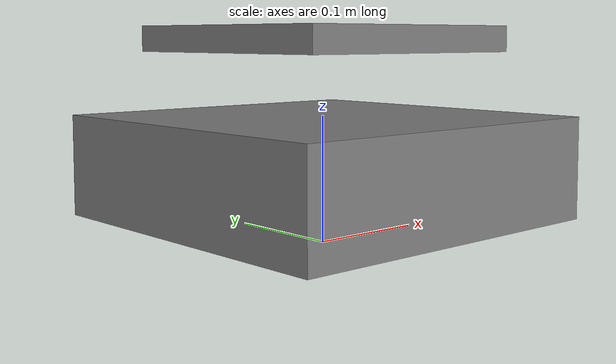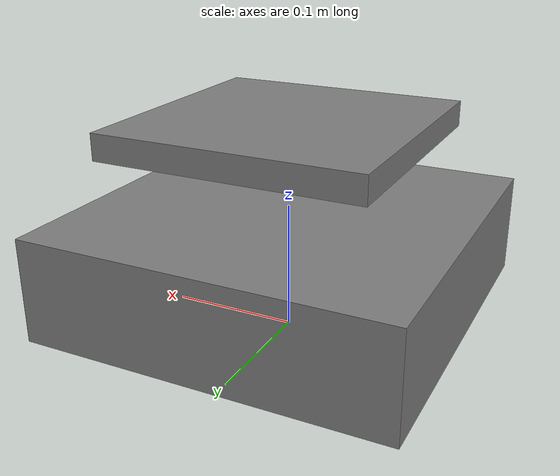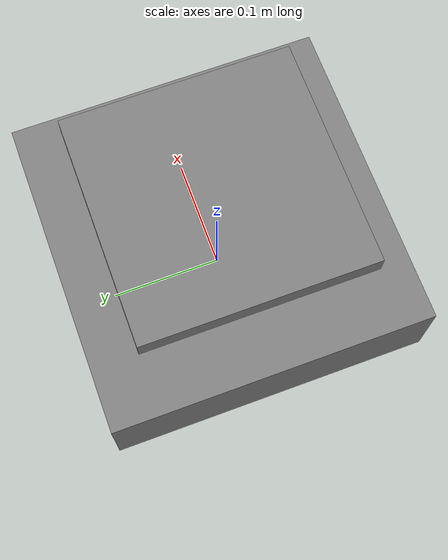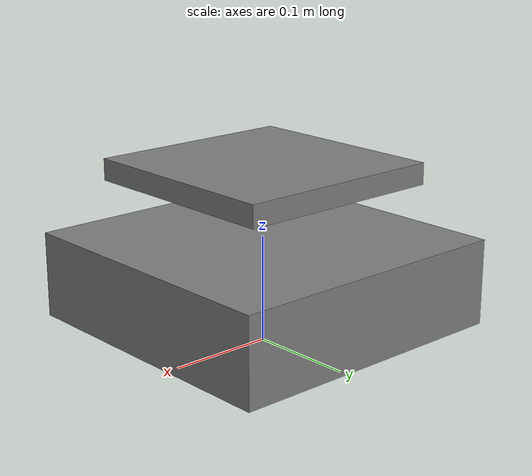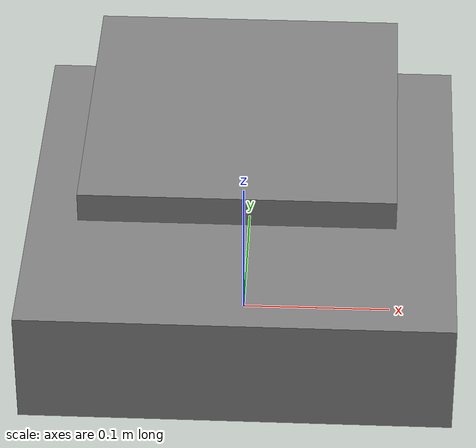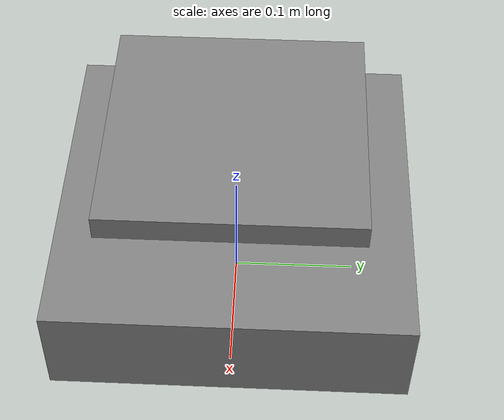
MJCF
<mujoco model="turtlebot3_waffle_pi_physics">
  <!-- 물리 시뮬레이션 파라미터 튜닝을 위한 템플릿 -->
  <compiler angle="radian"/>
  <option timestep="0.002" gravity="0 0 -9.81"/>

  <default>
    <geom friction="1.2 0.005 0.0001"/> <!-- 터틀봇 바퀴와 바닥면의 고마찰 계수 설정 -->
  </default>

  <worldbody>
    <!-- 터틀봇 베이스 링크 모사 (질량 중심 및 서스펜션 특성) -->
    <body name="base_footprint" pos="0 0 0.01">
      <freejoint/>
      <geom type="box" size="0.14 0.14 0.04" mass="1.8" pos="0 0 0.05"/>

      <!-- 적재함(상단) -->
      <body name="cargo_tray" pos="0 0 0.15">
        <!-- 화물이 적재될 때의 충격량을 받아내는 서스펜션 효과 모사 (조인트 강성) -->
        <joint type="slide" axis="0 0 1" stiffness="500" damping="50"/>
        <geom type="box" size="0.1 0.1 0.01" mass="0.1"/>
      </body>
    </body>
  </worldbody>
</mujoco>
